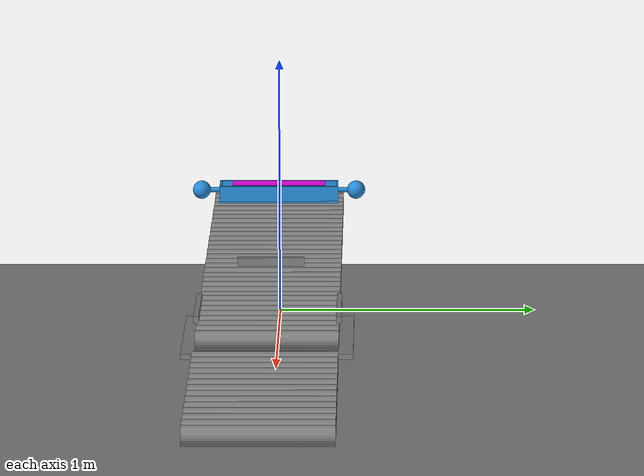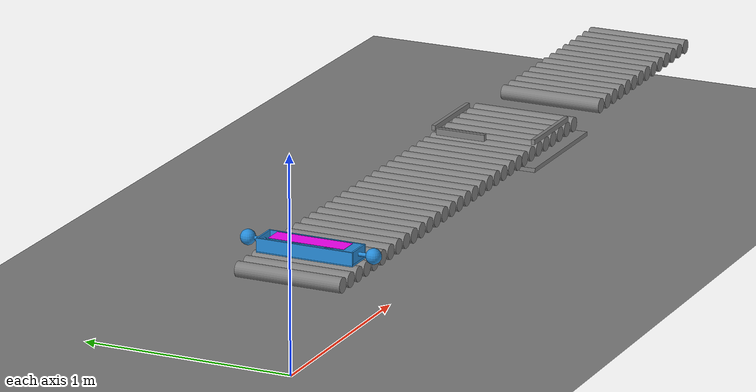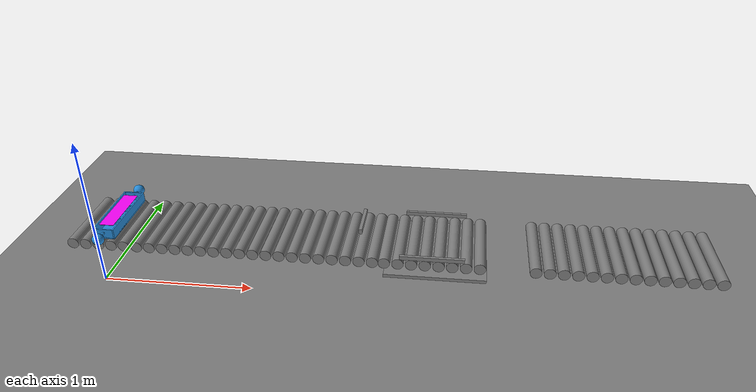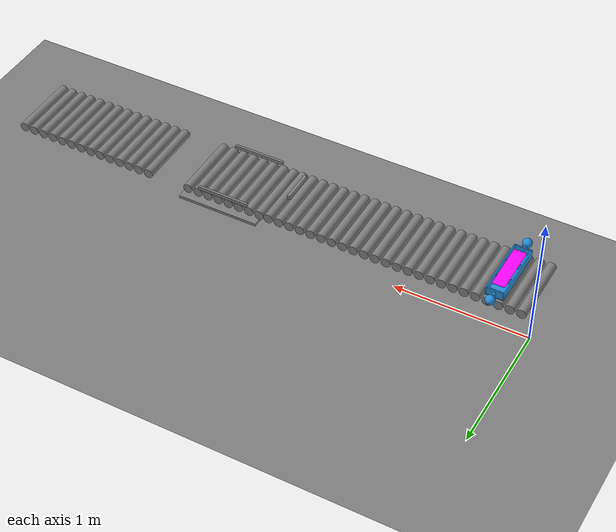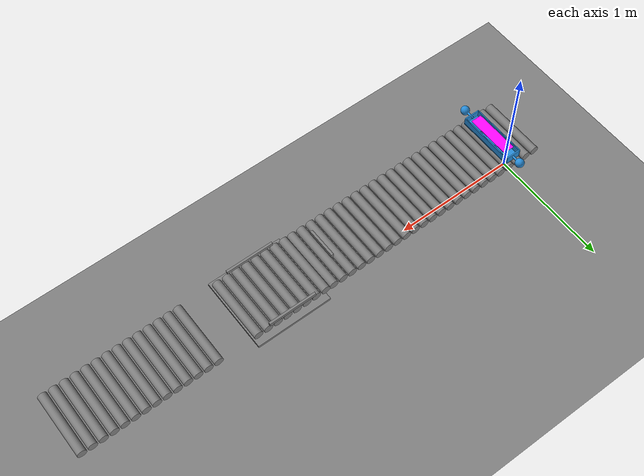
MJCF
<mujoco model="010 C transfer rig (real V1 tray)"><option timestep=".002" integrator="implicitfast" /><default><geom friction="0.2500 0.005 0.001" condim="4" /></default><worldbody><geom name="floor" type="plane" size="5 5 .1" friction="0.2500 0.005 0.001" /><body name="fixed_roller_0_0" pos="0.0 0 0.45"><joint name="fixed_roller_0_0_joint" type="hinge" axis="0 1 0" damping=".01" /><geom name="fixed_roller_0_0" type="cylinder" size="0.035 0.25" quat=".70710678 .70710678 0 0" mass=".4" condim="4" friction="0.2500 0.005 0.001" /></body><body name="fixed_roller_0_1" pos="0.08 0 0.45"><joint name="fixed_roller_0_1_joint" type="hinge" axis="0 1 0" damping=".01" /><geom name="fixed_roller_0_1" type="cylinder" size="0.035 0.25" quat=".70710678 .70710678 0 0" mass=".4" condim="4" friction="0.2500 0.005 0.001" /></body><body name="fixed_roller_0_2" pos="0.16 0 0.45"><joint name="fixed_roller_0_2_joint" type="hinge" axis="0 1 0" damping=".01" /><geom name="fixed_roller_0_2" type="cylinder" size="0.035 0.25" quat=".70710678 .70710678 0 0" mass=".4" condim="4" friction="0.2500 0.005 0.001" /></body><body name="fixed_roller_0_3" pos="0.24 0 0.45"><joint name="fixed_roller_0_3_joint" type="hinge" axis="0 1 0" damping=".01" /><geom name="fixed_roller_0_3" type="cylinder" size="0.035 0.25" quat=".70710678 .70710678 0 0" mass=".4" condim="4" friction="0.2500 0.005 0.001" /></body><body name="fixed_roller_0_4" pos="0.32 0 0.45"><joint name="fixed_roller_0_4_joint" type="hinge" axis="0 1 0" damping=".01" /><geom name="fixed_roller_0_4" type="cylinder" size="0.035 0.25" quat=".70710678 .70710678 0 0" mass=".4" condim="4" friction="0.2500 0.005 0.001" /></body><body name="fixed_roller_0_5" pos="0.4 0 0.45"><joint name="fixed_roller_0_5_joint" type="hinge" axis="0 1 0" damping=".01" /><geom name="fixed_roller_0_5" type="cylinder" size="0.035 0.25" quat=".70710678 .70710678 0 0" mass=".4" condim="4" friction="0.2500 0.005 0.001" /></body><body name="fixed_roller_0_6" pos="0.48 0 0.45"><joint name="fixed_roller_0_6_joint" type="hinge" axis="0 1 0" damping=".01" /><geom name="fixed_roller_0_6" type="cylinder" size="0.035 0.25" quat=".70710678 .70710678 0 0" mass=".4" condim="4" friction="0.2500 0.005 0.001" /></body><body name="fixed_roller_0_7" pos="0.56 0 0.45"><joint name="fixed_roller_0_7_joint" type="hinge" axis="0 1 0" damping=".01" /><geom name="fixed_roller_0_7" type="cylinder" size="0.035 0.25" quat=".70710678 .70710678 0 0" mass=".4" condim="4" friction="0.2500 0.005 0.001" /></body><body name="fixed_roller_1_0" pos="0.64 0 0.45"><joint name="fixed_roller_1_0_joint" type="hinge" axis="0 1 0" damping=".01" /><geom name="fixed_roller_1_0" type="cylinder" size="0.035 0.25" quat=".70710678 .70710678 0 0" mass=".4" condim="4" friction="0.2500 0.005 0.001" /></body><body name="fixed_roller_1_1" pos="0.72 0 0.45"><joint name="fixed_roller_1_1_joint" type="hinge" axis="0 1 0" damping=".01" /><geom name="fixed_roller_1_1" type="cylinder" size="0.035 0.25" quat=".70710678 .70710678 0 0" mass=".4" condim="4" friction="0.2500 0.005 0.001" /></body><body name="fixed_roller_1_2" pos="0.8 0 0.45"><joint name="fixed_roller_1_2_joint" type="hinge" axis="0 1 0" damping=".01" /><geom name="fixed_roller_1_2" type="cylinder" size="0.035 0.25" quat=".70710678 .70710678 0 0" mass=".4" condim="4" friction="0.2500 0.005 0.001" /></body><body name="fixed_roller_1_3" pos="0.88 0 0.45"><joint name="fixed_roller_1_3_joint" type="hinge" axis="0 1 0" damping=".01" /><geom name="fixed_roller_1_3" type="cylinder" size="0.035 0.25" quat=".70710678 .70710678 0 0" mass=".4" condim="4" friction="0.2500 0.005 0.001" /></body><body name="fixed_roller_1_4" pos="0.96 0 0.45"><joint name="fixed_roller_1_4_joint" type="hinge" axis="0 1 0" damping=".01" /><geom name="fixed_roller_1_4" type="cylinder" size="0.035 0.25" quat=".70710678 .70710678 0 0" mass=".4" condim="4" friction="0.2500 0.005 0.001" /></body><body name="fixed_roller_1_5" pos="1.04 0 0.45"><joint name="fixed_roller_1_5_joint" type="hinge" axis="0 1 0" damping=".01" /><geom name="fixed_roller_1_5" type="cylinder" size="0.035 0.25" quat=".70710678 .70710678 0 0" mass=".4" condim="4" friction="0.2500 0.005 0.001" /></body><body name="fixed_roller_1_6" pos="1.12 0 0.45"><joint name="fixed_roller_1_6_joint" type="hinge" axis="0 1 0" damping=".01" /><geom name="fixed_roller_1_6" type="cylinder" size="0.035 0.25" quat=".70710678 .70710678 0 0" mass=".4" condim="4" friction="0.2500 0.005 0.001" /></body><body name="fixed_roller_1_7" pos="1.2000000000000002 0 0.45"><joint name="fixed_roller_1_7_joint" type="hinge" axis="0 1 0" damping=".01" /><geom name="fixed_roller_1_7" type="cylinder" size="0.035 0.25" quat=".70710678 .70710678 0 0" mass=".4" condim="4" friction="0.2500 0.005 0.001" /></body><body name="fixed_roller_2_0" pos="1.28 0 0.45"><joint name="fixed_roller_2_0_joint" type="hinge" axis="0 1 0" damping=".01" /><geom name="fixed_roller_2_0" type="cylinder" size="0.035 0.25" quat=".70710678 .70710678 0 0" mass=".4" condim="4" friction="0.2500 0.005 0.001" /></body><body name="fixed_roller_2_1" pos="1.36 0 0.45"><joint name="fixed_roller_2_1_joint" type="hinge" axis="0 1 0" damping=".01" /><geom name="fixed_roller_2_1" type="cylinder" size="0.035 0.25" quat=".70710678 .70710678 0 0" mass=".4" condim="4" friction="0.2500 0.005 0.001" /></body><body name="fixed_roller_2_2" pos="1.44 0 0.45"><joint name="fixed_roller_2_2_joint" type="hinge" axis="0 1 0" damping=".01" /><geom name="fixed_roller_2_2" type="cylinder" size="0.035 0.25" quat=".70710678 .70710678 0 0" mass=".4" condim="4" friction="0.2500 0.005 0.001" /></body><body name="fixed_roller_2_3" pos="1.52 0 0.45"><joint name="fixed_roller_2_3_joint" type="hinge" axis="0 1 0" damping=".01" /><geom name="fixed_roller_2_3" type="cylinder" size="0.035 0.25" quat=".70710678 .70710678 0 0" mass=".4" condim="4" friction="0.2500 0.005 0.001" /></body><body name="fixed_roller_2_4" pos="1.6 0 0.45"><joint name="fixed_roller_2_4_joint" type="hinge" axis="0 1 0" damping=".01" /><geom name="fixed_roller_2_4" type="cylinder" size="0.035 0.25" quat=".70710678 .70710678 0 0" mass=".4" condim="4" friction="0.2500 0.005 0.001" /></body><body name="fixed_roller_2_5" pos="1.6800000000000002 0 0.45"><joint name="fixed_roller_2_5_joint" type="hinge" axis="0 1 0" damping=".01" /><geom name="fixed_roller_2_5" type="cylinder" size="0.035 0.25" quat=".70710678 .70710678 0 0" mass=".4" condim="4" friction="0.2500 0.005 0.001" /></body><body name="fixed_roller_2_6" pos="1.76 0 0.45"><joint name="fixed_roller_2_6_joint" type="hinge" axis="0 1 0" damping=".01" /><geom name="fixed_roller_2_6" type="cylinder" size="0.035 0.25" quat=".70710678 .70710678 0 0" mass=".4" condim="4" friction="0.2500 0.005 0.001" /></body><body name="fixed_roller_2_7" pos="1.84 0 0.45"><joint name="fixed_roller_2_7_joint" type="hinge" axis="0 1 0" damping=".01" /><geom name="fixed_roller_2_7" type="cylinder" size="0.035 0.25" quat=".70710678 .70710678 0 0" mass=".4" condim="4" friction="0.2500 0.005 0.001" /></body><body name="recv_roller_0" pos="2.79 0 0.45"><joint name="recv_roller_0_joint" type="hinge" axis="0 1 0" damping=".01" /><geom name="recv_roller_0" type="cylinder" size="0.035 0.25" quat=".70710678 .70710678 0 0" mass=".4" condim="4" friction="0.2500 0.005 0.001" /></body><body name="recv_roller_1" pos="2.87 0 0.45"><joint name="recv_roller_1_joint" type="hinge" axis="0 1 0" damping=".01" /><geom name="recv_roller_1" type="cylinder" size="0.035 0.25" quat=".70710678 .70710678 0 0" mass=".4" condim="4" friction="0.2500 0.005 0.001" /></body><body name="recv_roller_2" pos="2.95 0 0.45"><joint name="recv_roller_2_joint" type="hinge" axis="0 1 0" damping=".01" /><geom name="recv_roller_2" type="cylinder" size="0.035 0.25" quat=".70710678 .70710678 0 0" mass=".4" condim="4" friction="0.2500 0.005 0.001" /></body><body name="recv_roller_3" pos="3.0300000000000002 0 0.45"><joint name="recv_roller_3_joint" type="hinge" axis="0 1 0" damping=".01" /><geom name="recv_roller_3" type="cylinder" size="0.035 0.25" quat=".70710678 .70710678 0 0" mass=".4" condim="4" friction="0.2500 0.005 0.001" /></body><body name="recv_roller_4" pos="3.11 0 0.45"><joint name="recv_roller_4_joint" type="hinge" axis="0 1 0" damping=".01" /><geom name="recv_roller_4" type="cylinder" size="0.035 0.25" quat=".70710678 .70710678 0 0" mass=".4" condim="4" friction="0.2500 0.005 0.001" /></body><body name="recv_roller_5" pos="3.19 0 0.45"><joint name="recv_roller_5_joint" type="hinge" axis="0 1 0" damping=".01" /><geom name="recv_roller_5" type="cylinder" size="0.035 0.25" quat=".70710678 .70710678 0 0" mass=".4" condim="4" friction="0.2500 0.005 0.001" /></body><body name="recv_roller_6" pos="3.27 0 0.45"><joint name="recv_roller_6_joint" type="hinge" axis="0 1 0" damping=".01" /><geom name="recv_roller_6" type="cylinder" size="0.035 0.25" quat=".70710678 .70710678 0 0" mass=".4" condim="4" friction="0.2500 0.005 0.001" /></body><body name="recv_roller_7" pos="3.35 0 0.45"><joint name="recv_roller_7_joint" type="hinge" axis="0 1 0" damping=".01" /><geom name="recv_roller_7" type="cylinder" size="0.035 0.25" quat=".70710678 .70710678 0 0" mass=".4" condim="4" friction="0.2500 0.005 0.001" /></body><body name="recv_roller_8" pos="3.43 0 0.45"><joint name="recv_roller_8_joint" type="hinge" axis="0 1 0" damping=".01" /><geom name="recv_roller_8" type="cylinder" size="0.035 0.25" quat=".70710678 .70710678 0 0" mass=".4" condim="4" friction="0.2500 0.005 0.001" /></body><body name="recv_roller_9" pos="3.51 0 0.45"><joint name="recv_roller_9_joint" type="hinge" axis="0 1 0" damping=".01" /><geom name="recv_roller_9" type="cylinder" size="0.035 0.25" quat=".70710678 .70710678 0 0" mass=".4" condim="4" friction="0.2500 0.005 0.001" /></body><body name="recv_roller_10" pos="3.59 0 0.45"><joint name="recv_roller_10_joint" type="hinge" axis="0 1 0" damping=".01" /><geom name="recv_roller_10" type="cylinder" size="0.035 0.25" quat=".70710678 .70710678 0 0" mass=".4" condim="4" friction="0.2500 0.005 0.001" /></body><body name="recv_roller_11" pos="3.67 0 0.45"><joint name="recv_roller_11_joint" type="hinge" axis="0 1 0" damping=".01" /><geom name="recv_roller_11" type="cylinder" size="0.035 0.25" quat=".70710678 .70710678 0 0" mass=".4" condim="4" friction="0.2500 0.005 0.001" /></body><body name="recv_roller_12" pos="3.75 0 0.45"><joint name="recv_roller_12_joint" type="hinge" axis="0 1 0" damping=".01" /><geom name="recv_roller_12" type="cylinder" size="0.035 0.25" quat=".70710678 .70710678 0 0" mass=".4" condim="4" friction="0.2500 0.005 0.001" /></body><body name="recv_roller_13" pos="3.83 0 0.45"><joint name="recv_roller_13_joint" type="hinge" axis="0 1 0" damping=".01" /><geom name="recv_roller_13" type="cylinder" size="0.035 0.25" quat=".70710678 .70710678 0 0" mass=".4" condim="4" friction="0.2500 0.005 0.001" /></body><body name="deck" pos="1.9200000000000002 0 0.485" quat="1.0 0 0 0.0"><joint name="deck_slide" type="slide" axis="1 0 0" damping="0" /><geom name="deck_frame" type="box" size="0.3 0.3 0.01" pos="0.29 0 -0.085" mass="5" condim="4" friction="0.2500 0.005 0.001" /><body name="deck_roller_0" pos="-0.010000000000000009 0 -0.035"><joint name="deck_roller_0_joint" type="hinge" axis="0 1 0" damping=".01" /><geom name="deck_roller_0" type="cylinder" size="0.035 0.25" quat=".70710678 .70710678 0 0" mass=".4" condim="4" friction="0.2500 0.005 0.001" /></body><body name="deck_roller_1" pos="0.06999999999999999 0 -0.035"><joint name="deck_roller_1_joint" type="hinge" axis="0 1 0" damping=".01" /><geom name="deck_roller_1" type="cylinder" size="0.035 0.25" quat=".70710678 .70710678 0 0" mass=".4" condim="4" friction="0.2500 0.005 0.001" /></body><body name="deck_roller_2" pos="0.15 0 -0.035"><joint name="deck_roller_2_joint" type="hinge" axis="0 1 0" damping=".01" /><geom name="deck_roller_2" type="cylinder" size="0.035 0.25" quat=".70710678 .70710678 0 0" mass=".4" condim="4" friction="0.2500 0.005 0.001" /></body><body name="deck_roller_3" pos="0.22999999999999998 0 -0.035"><joint name="deck_roller_3_joint" type="hinge" axis="0 1 0" damping=".01" /><geom name="deck_roller_3" type="cylinder" size="0.035 0.25" quat=".70710678 .70710678 0 0" mass=".4" condim="4" friction="0.2500 0.005 0.001" /></body><body name="deck_roller_4" pos="0.31 0 -0.035"><joint name="deck_roller_4_joint" type="hinge" axis="0 1 0" damping=".01" /><geom name="deck_roller_4" type="cylinder" size="0.035 0.25" quat=".70710678 .70710678 0 0" mass=".4" condim="4" friction="0.2500 0.005 0.001" /></body><body name="deck_roller_5" pos="0.39 0 -0.035"><joint name="deck_roller_5_joint" type="hinge" axis="0 1 0" damping=".01" /><geom name="deck_roller_5" type="cylinder" size="0.035 0.25" quat=".70710678 .70710678 0 0" mass=".4" condim="4" friction="0.2500 0.005 0.001" /></body><body name="deck_roller_6" pos="0.47 0 -0.035"><joint name="deck_roller_6_joint" type="hinge" axis="0 1 0" damping=".01" /><geom name="deck_roller_6" type="cylinder" size="0.035 0.25" quat=".70710678 .70710678 0 0" mass=".4" condim="4" friction="0.2500 0.005 0.001" /></body><body name="deck_roller_7" pos="0.55 0 -0.035"><joint name="deck_roller_7_joint" type="hinge" axis="0 1 0" damping=".01" /><geom name="deck_roller_7" type="cylinder" size="0.035 0.25" quat=".70710678 .70710678 0 0" mass=".4" condim="4" friction="0.2500 0.005 0.001" /></body><geom name="guide_rail_-1" type="box" size="0.19 0.009 0.012" pos="0.27 -0.2495 0.017" mass=".3" condim="4" friction="0.1000 0.005 0.001" /><geom name="guide_rail_+1" type="box" size="0.19 0.009 0.012" pos="0.27 0.2495 0.017" mass=".3" condim="4" friction="0.1000 0.005 0.001" /><body name="pusher_carriage" pos="0 0 0"><joint name="pusher_slide_joint" type="slide" axis="1 0 0" damping="0" range="0 0.39" limited="true" /><geom name="pusher_carriage_body" type="box" size="0.215 0.1 0.01" pos="0.185 0 -0.11000000000000001" mass="1" condim="4" friction="0.2500 0.005 0.001" /><body name="pusher_blade" pos="-0.165 0 0.07600000000000001"><joint name="pusher_lift_joint" type="slide" axis="0 0 1" damping="0" range="0 0.001" limited="true" /><geom name="rear_pusher" type="box" size="0.01 0.12 0.015" pos="0 0 0.015" mass=".5" condim="4" friction="0.2500 0.005 0.001" /></body></body></body><body name="payload" pos="0.2 0 0.525">
  <freejoint name="payload_free" />
  <geom name="tray_floor" type="box" size="0.065 0.230 0.005" pos="0 0 -0.035" mass="0.030" condim="6" friction="0.2500 0.005 0.001" rgba="0.15 0.55 0.85 1" />
  <geom name="tray_wall_xp" type="box" size="0.004 0.230 0.030" pos="0.061 0 -0.005" mass="0.008" condim="6" friction="0.2500 0.005 0.001" rgba="0.15 0.55 0.85 1" />
  <geom name="tray_wall_xn" type="box" size="0.004 0.230 0.030" pos="-0.061 0 -0.005" mass="0.008" condim="6" friction="0.2500 0.005 0.001" rgba="0.15 0.55 0.85 1" />
  <geom name="tray_wall_yp" type="box" size="0.057 0.004 0.030" pos="0 0.226 -0.005" mass="0.008" condim="6" friction="0.2500 0.005 0.001" rgba="0.15 0.55 0.85 1" />
  <geom name="tray_wall_yn" type="box" size="0.057 0.004 0.030" pos="0 -0.226 -0.005" mass="0.008" condim="6" friction="0.2500 0.005 0.001" rgba="0.15 0.55 0.85 1" />
  <geom name="tray_divider_1" type="box" size="0.057 0.003 0.024" pos="0 -0.0767 -0.011" mass="0.004" condim="6" friction="0.2500 0.005 0.001" rgba="0.15 0.55 0.85 1" />
  <geom name="tray_divider_2" type="box" size="0.057 0.003 0.024" pos="0 0.0767 -0.011" mass="0.004" condim="6" friction="0.2500 0.005 0.001" rgba="0.15 0.55 0.85 1" />
  <geom name="handle_-1" type="sphere" pos="0 -0.3 0" size="0.035" mass="0.012" condim="6" friction="0.2500 0.005 0.001" rgba="0.15 0.55 0.85 1" />
  <geom name="handle_stem_-1" type="capsule" fromto="0 -0.22 0 0 -0.3 0" size=".009" mass="0.002" rgba="0.15 0.55 0.85 1" />
  <geom name="handle_1" type="sphere" pos="0 0.3 0" size="0.035" mass="0.012" condim="6" friction="0.2500 0.005 0.001" rgba="0.15 0.55 0.85 1" />
  <geom name="handle_stem_1" type="capsule" fromto="0 0.22 0 0 0.3 0" size=".009" mass="0.002" rgba="0.15 0.55 0.85 1" />
  <geom name="visual_marker" type="box" pos="0 0 0.026" size=".045 .18 .001" rgba="1 .02 1 1" contype="0" conaffinity="0" mass="0" />
</body></worldbody><actuator><velocity name="fixed_roller_0_0" joint="fixed_roller_0_0_joint" kv="2" ctrllimited="true" ctrlrange="-5 5" forcelimited="true" forcerange="-2 2" /><velocity name="fixed_roller_0_1" joint="fixed_roller_0_1_joint" kv="2" ctrllimited="true" ctrlrange="-5 5" forcelimited="true" forcerange="-2 2" /><velocity name="fixed_roller_0_2" joint="fixed_roller_0_2_joint" kv="2" ctrllimited="true" ctrlrange="-5 5" forcelimited="true" forcerange="-2 2" /><velocity name="fixed_roller_0_3" joint="fixed_roller_0_3_joint" kv="2" ctrllimited="true" ctrlrange="-5 5" forcelimited="true" forcerange="-2 2" /><velocity name="fixed_roller_0_4" joint="fixed_roller_0_4_joint" kv="2" ctrllimited="true" ctrlrange="-5 5" forcelimited="true" forcerange="-2 2" /><velocity name="fixed_roller_0_5" joint="fixed_roller_0_5_joint" kv="2" ctrllimited="true" ctrlrange="-5 5" forcelimited="true" forcerange="-2 2" /><velocity name="fixed_roller_0_6" joint="fixed_roller_0_6_joint" kv="2" ctrllimited="true" ctrlrange="-5 5" forcelimited="true" forcerange="-2 2" /><velocity name="fixed_roller_0_7" joint="fixed_roller_0_7_joint" kv="2" ctrllimited="true" ctrlrange="-5 5" forcelimited="true" forcerange="-2 2" /><velocity name="fixed_roller_1_0" joint="fixed_roller_1_0_joint" kv="2" ctrllimited="true" ctrlrange="-5 5" forcelimited="true" forcerange="-2 2" /><velocity name="fixed_roller_1_1" joint="fixed_roller_1_1_joint" kv="2" ctrllimited="true" ctrlrange="-5 5" forcelimited="true" forcerange="-2 2" /><velocity name="fixed_roller_1_2" joint="fixed_roller_1_2_joint" kv="2" ctrllimited="true" ctrlrange="-5 5" forcelimited="true" forcerange="-2 2" /><velocity name="fixed_roller_1_3" joint="fixed_roller_1_3_joint" kv="2" ctrllimited="true" ctrlrange="-5 5" forcelimited="true" forcerange="-2 2" /><velocity name="fixed_roller_1_4" joint="fixed_roller_1_4_joint" kv="2" ctrllimited="true" ctrlrange="-5 5" forcelimited="true" forcerange="-2 2" /><velocity name="fixed_roller_1_5" joint="fixed_roller_1_5_joint" kv="2" ctrllimited="true" ctrlrange="-5 5" forcelimited="true" forcerange="-2 2" /><velocity name="fixed_roller_1_6" joint="fixed_roller_1_6_joint" kv="2" ctrllimited="true" ctrlrange="-5 5" forcelimited="true" forcerange="-2 2" /><velocity name="fixed_roller_1_7" joint="fixed_roller_1_7_joint" kv="2" ctrllimited="true" ctrlrange="-5 5" forcelimited="true" forcerange="-2 2" /><velocity name="fixed_roller_2_0" joint="fixed_roller_2_0_joint" kv="2" ctrllimited="true" ctrlrange="-5 5" forcelimited="true" forcerange="-2 2" /><velocity name="fixed_roller_2_1" joint="fixed_roller_2_1_joint" kv="2" ctrllimited="true" ctrlrange="-5 5" forcelimited="true" forcerange="-2 2" /><velocity name="fixed_roller_2_2" joint="fixed_roller_2_2_joint" kv="2" ctrllimited="true" ctrlrange="-5 5" forcelimited="true" forcerange="-2 2" /><velocity name="fixed_roller_2_3" joint="fixed_roller_2_3_joint" kv="2" ctrllimited="true" ctrlrange="-5 5" forcelimited="true" forcerange="-2 2" /><velocity name="fixed_roller_2_4" joint="fixed_roller_2_4_joint" kv="2" ctrllimited="true" ctrlrange="-5 5" forcelimited="true" forcerange="-2 2" /><velocity name="fixed_roller_2_5" joint="fixed_roller_2_5_joint" kv="2" ctrllimited="true" ctrlrange="-5 5" forcelimited="true" forcerange="-2 2" /><velocity name="fixed_roller_2_6" joint="fixed_roller_2_6_joint" kv="2" ctrllimited="true" ctrlrange="-5 5" forcelimited="true" forcerange="-2 2" /><velocity name="fixed_roller_2_7" joint="fixed_roller_2_7_joint" kv="2" ctrllimited="true" ctrlrange="-5 5" forcelimited="true" forcerange="-2 2" /><velocity name="recv_roller_0" joint="recv_roller_0_joint" kv="2" ctrllimited="true" ctrlrange="-5 5" forcelimited="true" forcerange="-2 2" /><velocity name="recv_roller_1" joint="recv_roller_1_joint" kv="2" ctrllimited="true" ctrlrange="-5 5" forcelimited="true" forcerange="-2 2" /><velocity name="recv_roller_2" joint="recv_roller_2_joint" kv="2" ctrllimited="true" ctrlrange="-5 5" forcelimited="true" forcerange="-2 2" /><velocity name="recv_roller_3" joint="recv_roller_3_joint" kv="2" ctrllimited="true" ctrlrange="-5 5" forcelimited="true" forcerange="-2 2" /><velocity name="recv_roller_4" joint="recv_roller_4_joint" kv="2" ctrllimited="true" ctrlrange="-5 5" forcelimited="true" forcerange="-2 2" /><velocity name="recv_roller_5" joint="recv_roller_5_joint" kv="2" ctrllimited="true" ctrlrange="-5 5" forcelimited="true" forcerange="-2 2" /><velocity name="recv_roller_6" joint="recv_roller_6_joint" kv="2" ctrllimited="true" ctrlrange="-5 5" forcelimited="true" forcerange="-2 2" /><velocity name="recv_roller_7" joint="recv_roller_7_joint" kv="2" ctrllimited="true" ctrlrange="-5 5" forcelimited="true" forcerange="-2 2" /><velocity name="recv_roller_8" joint="recv_roller_8_joint" kv="2" ctrllimited="true" ctrlrange="-5 5" forcelimited="true" forcerange="-2 2" /><velocity name="recv_roller_9" joint="recv_roller_9_joint" kv="2" ctrllimited="true" ctrlrange="-5 5" forcelimited="true" forcerange="-2 2" /><velocity name="recv_roller_10" joint="recv_roller_10_joint" kv="2" ctrllimited="true" ctrlrange="-5 5" forcelimited="true" forcerange="-2 2" /><velocity name="recv_roller_11" joint="recv_roller_11_joint" kv="2" ctrllimited="true" ctrlrange="-5 5" forcelimited="true" forcerange="-2 2" /><velocity name="recv_roller_12" joint="recv_roller_12_joint" kv="2" ctrllimited="true" ctrlrange="-5 5" forcelimited="true" forcerange="-2 2" /><velocity name="recv_roller_13" joint="recv_roller_13_joint" kv="2" ctrllimited="true" ctrlrange="-5 5" forcelimited="true" forcerange="-2 2" /><position name="deck_drive" joint="deck_slide" kp="20000" kv="200" ctrllimited="true" ctrlrange="-0.5 1.5" forcelimited="true" forcerange="-3000 3000" /><velocity name="deck_roller_0" joint="deck_roller_0_joint" kv="2" ctrllimited="true" ctrlrange="-5 5" forcelimited="true" forcerange="-2 2" /><velocity name="deck_roller_1" joint="deck_roller_1_joint" kv="2" ctrllimited="true" ctrlrange="-5 5" forcelimited="true" forcerange="-2 2" /><velocity name="deck_roller_2" joint="deck_roller_2_joint" kv="2" ctrllimited="true" ctrlrange="-5 5" forcelimited="true" forcerange="-2 2" /><velocity name="deck_roller_3" joint="deck_roller_3_joint" kv="2" ctrllimited="true" ctrlrange="-5 5" forcelimited="true" forcerange="-2 2" /><velocity name="deck_roller_4" joint="deck_roller_4_joint" kv="2" ctrllimited="true" ctrlrange="-5 5" forcelimited="true" forcerange="-2 2" /><velocity name="deck_roller_5" joint="deck_roller_5_joint" kv="2" ctrllimited="true" ctrlrange="-5 5" forcelimited="true" forcerange="-2 2" /><velocity name="deck_roller_6" joint="deck_roller_6_joint" kv="2" ctrllimited="true" ctrlrange="-5 5" forcelimited="true" forcerange="-2 2" /><velocity name="deck_roller_7" joint="deck_roller_7_joint" kv="2" ctrllimited="true" ctrlrange="-5 5" forcelimited="true" forcerange="-2 2" /><position name="pusher_slide" joint="pusher_slide_joint" kp="4000" kv="150" ctrllimited="true" ctrlrange="0 0.39" forcelimited="true" forcerange="-200 200" /><position name="pusher_lift" joint="pusher_lift_joint" kp="2000" kv="100" ctrllimited="true" ctrlrange="0 0.001" forcelimited="true" forcerange="-30 30" /></actuator></mujoco>
